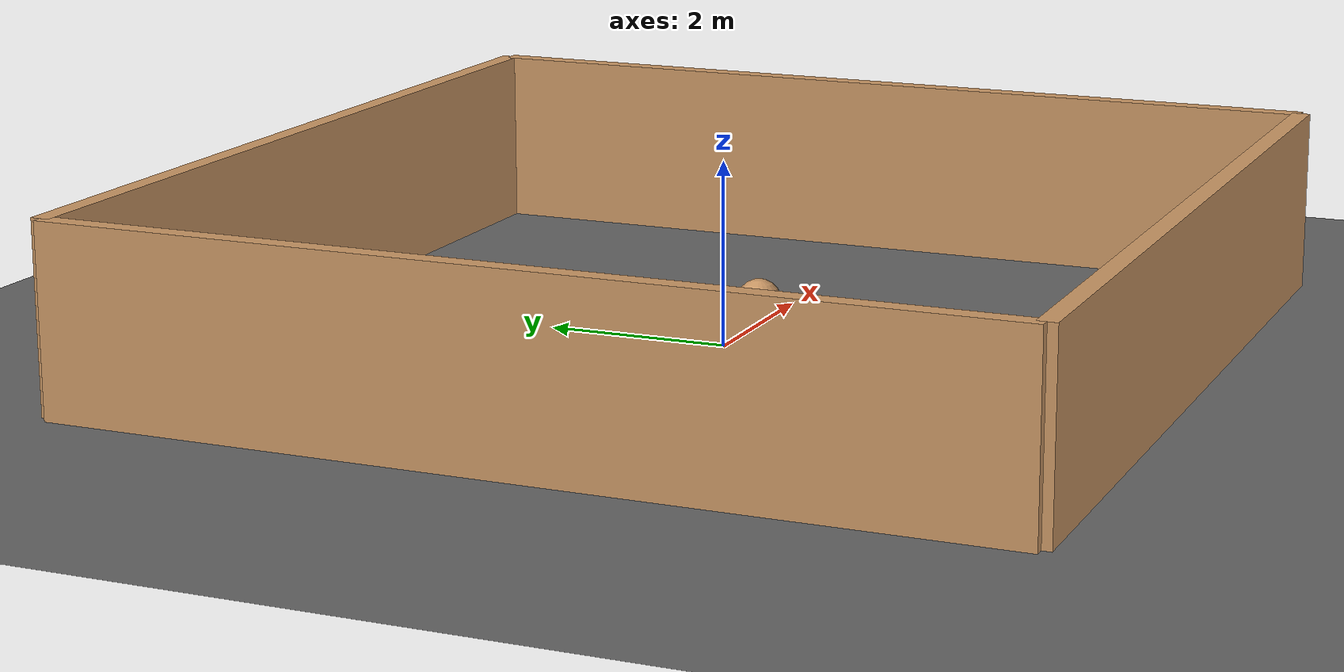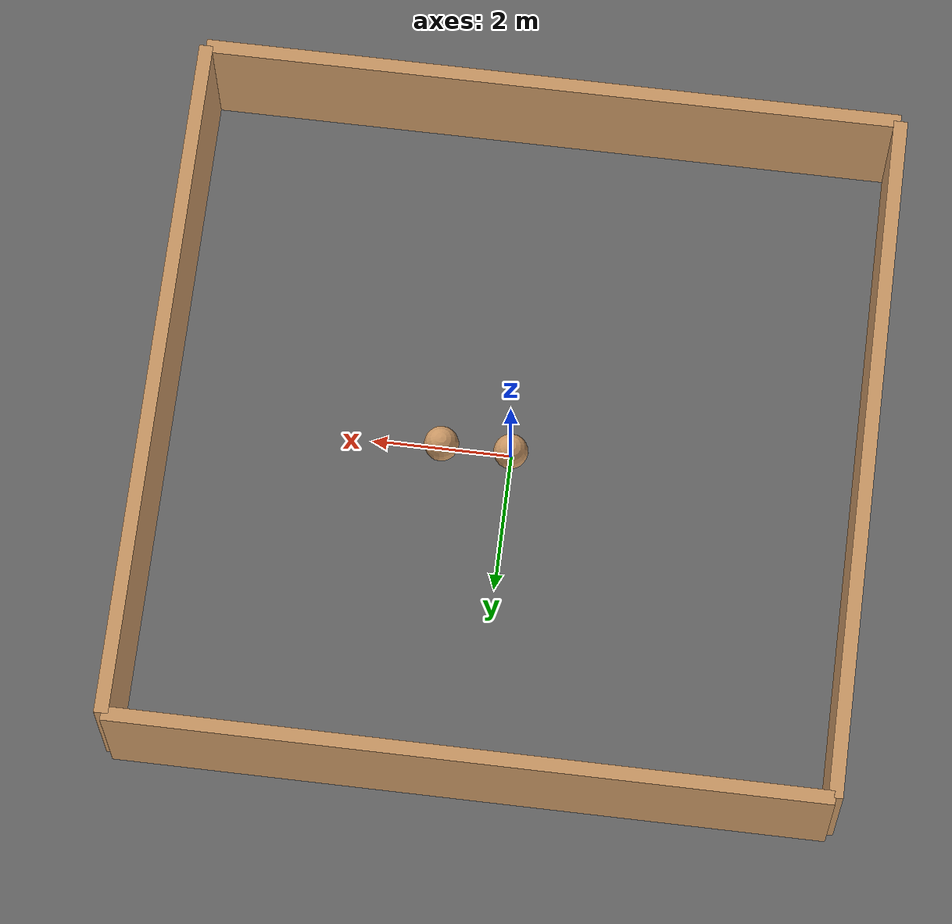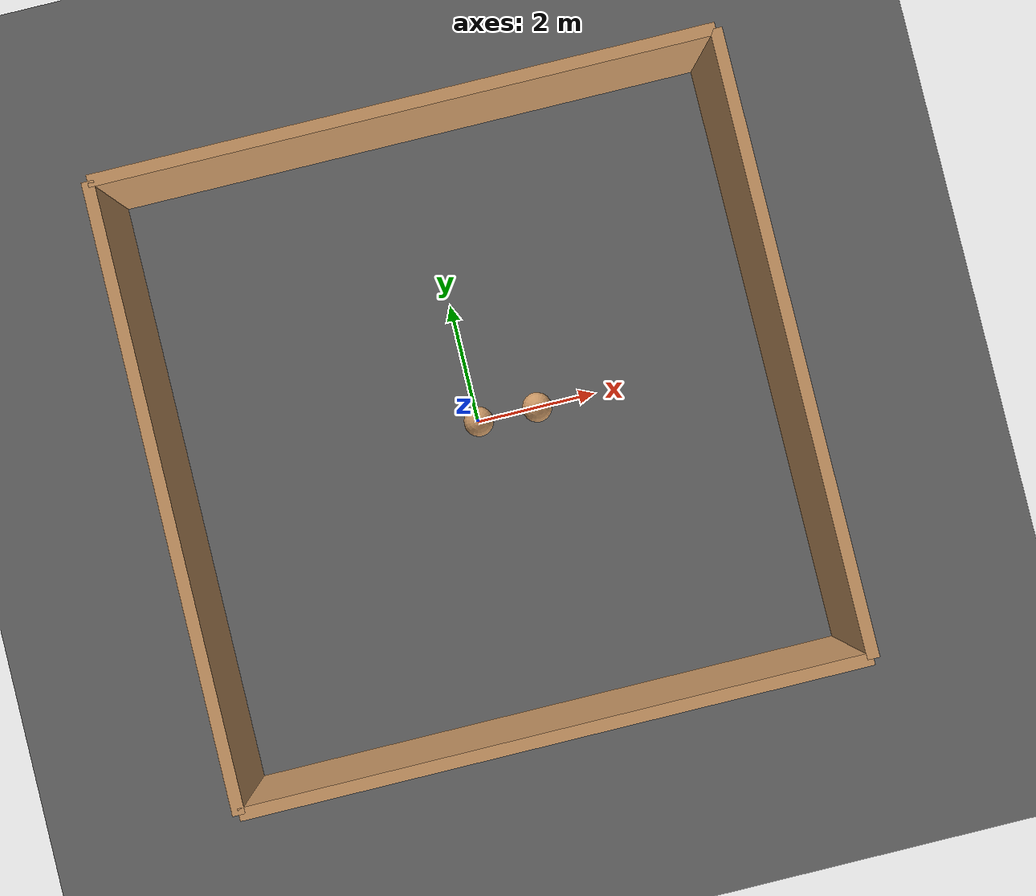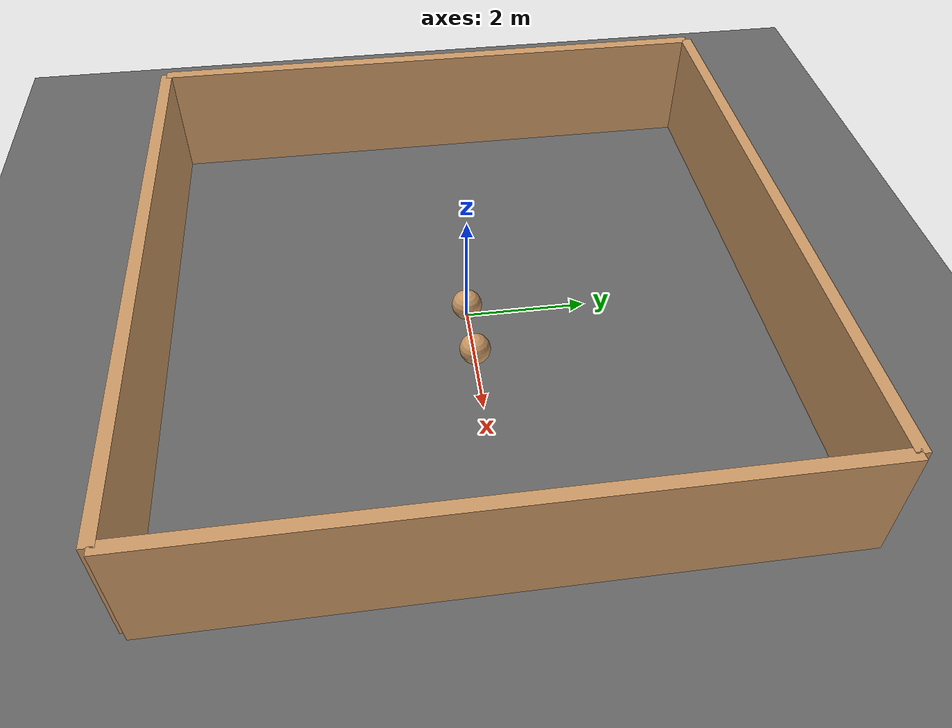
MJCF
<mujoco model="point_mass">
  <compiler angle="degree" coordinate="local" inertiafromgeom="true"/>
  <option timestep="0.02" iterations="4"/>
  <custom>
    <!-- brax custom params -->
    <numeric data="0.0 0.0 1.0 1.0" name="init_qpos"/>
    <numeric data="1000" name="constraint_limit_stiffness"/>
    <numeric data="4000" name="constraint_stiffness"/>
    <numeric data="10" name="constraint_ang_damping"/>
    <numeric data="20" name="constraint_vel_damping"/>
    <numeric data="0.5" name="joint_scale_pos"/>
    <numeric data="0.2" name="joint_scale_ang"/>
    <numeric data="0.0" name="ang_damping"/>
    <numeric data="1" name="spring_mass_scale"/>
    <numeric data="1" name="spring_inertia_scale"/>
    <numeric data="15" name="solver_maxls"/>
  </custom>

  <default>
    <joint armature="0" damping="0" limited="true"/>
    <geom contype="1" friction="1 0.1 0.1" rgba="0.8 0.6 0.4 1"/>
  </default>

  <asset>
    <texture builtin="gradient" height="100" rgb1="1 1 1" rgb2="0 0 0" type="skybox" width="100"/>
    <texture builtin="flat" height="1278" mark="cross" markrgb="1 1 1" name="texgeom" random="0.01" rgb1="0.8 0.6 0.4" rgb2="0.8 0.6 0.4" type="cube" width="127"/>
    <texture builtin="checker" height="100" name="texplane" rgb1="0 0 0" rgb2="0.8 0.8 0.8" type="2d" width="100"/>
    <material name="MatPlane" reflectance="0.5" shininess="1" specular="1" texrepeat="60 60" texture="texplane"/>
    <material name="geom" texture="texgeom" texuniform="true"/>
    <material name="grey" reflectance="0.5"/>
  </asset>

  <worldbody>
    <light cutoff="100" diffuse="1 1 1" dir="-0 0 -1.3" directional="true" exponent="1" pos="0 0 1.3" specular=".1 .1 .1"/>
    <geom conaffinity="1" condim="3" material="MatPlane" name="floor" pos="0 0 0" size="40 40 40" type="plane" rgba="0.5 0.5 0.5 1.0"/>
    <body name="point_mass_a1" pos="0 0 0.256">
      <geom contype="2" name="pointmass_a_1" type="sphere" size=".25"/>
      <joint name="root_x_a_1" type="slide" pos="0 0 0" axis="1 0 0" range="-100 100"/>
      <joint name="root_y_a_1" type="slide" pos="0 0 0" axis="0 1 0" range="-100 100"/>
    </body>
    <body name="point_mass_a2" pos="1 0 0.256">
      <geom contype="2" name="pointmass_a_2" type="sphere" size=".25" />
      <joint name="root_x_a_2" type="slide" pos="0 0 0" axis="1 0 0" range="-100 100"/>
      <joint name="root_y_a_2" type="slide" pos="0 0 0" axis="0 1 0" range="-100 100"/>
    </body>
    <geom conaffinity="2" condim="3" name="wall_1" type="box" size="0.1 5 1" pos="5 0 1"/>
    <geom conaffinity="2" condim="3" name="wall_2" type="box" size="0.1 5 1" pos="0 5 1" quat="0.7071 0 0 0.7071"/>
    <geom conaffinity="2" condim="3" name="wall_3" type="box" size="0.1 5 1" pos="0 -5 1" quat="0.7071 0 0 0.7071"/>
    <geom conaffinity="2" condim="3" name="wall_4" type="box" size="0.1 5 1" pos="-5 0 1"/>
  </worldbody>

  <actuator>
    <motor name="force_x_a1" joint="root_x_a_1" gear="10"/>
    <motor name="force_y_a1" joint="root_y_a_1" gear="10"/>
    <motor name="force_x_a2" joint="root_x_a_2" gear="10"/>
    <motor name="force_y_a2" joint="root_y_a_2" gear="10"/>
  </actuator>

</mujoco>
